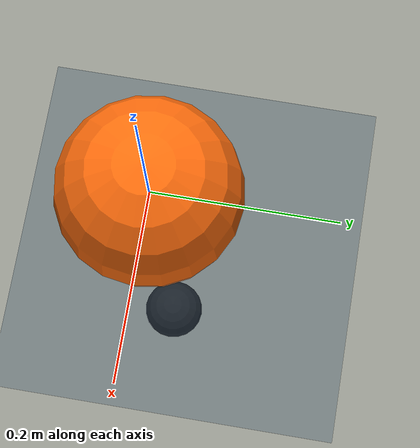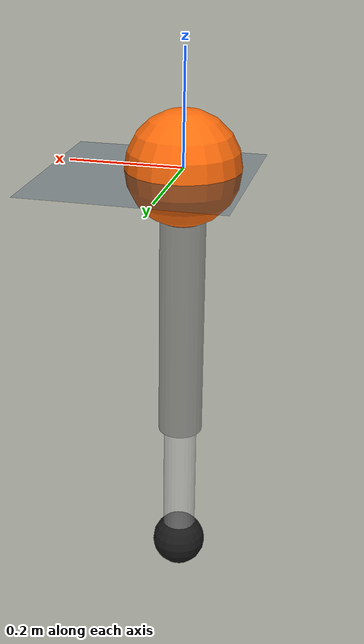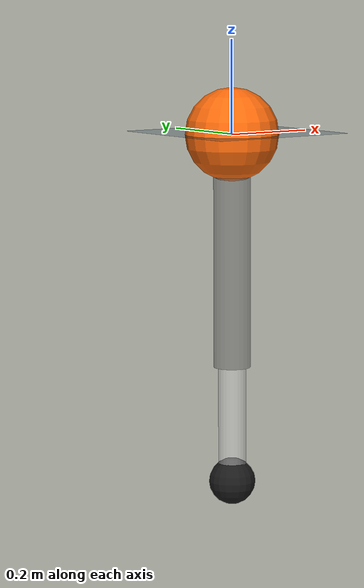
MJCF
<mujoco model="hopper">

    <!-- Simulation settings-->
    <option solver="Newton" integrator="RK4" timestep="0.005" iterations="20" ls_iterations="20" cone="elliptic"/>

    <!-- Inertia is computed from geometry -->
    <compiler inertiafromgeom="true" />

    <asset>
        <texture type="skybox" builtin="flat" rgb1="0 0 0" rgb2="0 0 0" width="512" height="512"/>
        <texture type="2d" name="groundplane" builtin="checker" mark="edge" rgb1="0.2 0.3 0.4" rgb2="0.1 0.2 0.3" markrgb="0.9 0.9 0.9" width="300" height="300"/>
        <material name="groundplane" texture="groundplane" texuniform="true" texrepeat="5 5" reflectance="0.2"/>
    </asset>

    <!-- Memory settings (default is 1000) -->
    <size nstack="3000" />

    <worldbody>

        <!-- Add light -->
        <light pos="-0.5 0.0 2.0" dir="0 0 -1" directional="true"/>

        <!-- Ground -->
        <geom name="ground" type="plane" size="0 0 0.01" material="groundplane" contype="1" conaffinity="6"/>

        <!-- Body -->
        <body name="torso" pos="0 0 0.0">
            <joint name="px"    type="slide" axis="1 0 0"/>
            <joint name="pz"    type="slide" axis="0 0 1"/>
            <joint name="theta" type="hinge" axis="0 1 0"/>
            <geom name="torso" type="sphere" size="0.1" rgba="1.0 0.424 0.047 1" contype="2" conaffinity="1"/>
            <site name="torso_site" type="sphere" size="0.101" rgba="0 0 0 0"/>
            <geom name="upper_leg" type="cylinder" fromto="0 0 0 0 0 -0.5" size="0.04" rgba="0.4 0.4 0.4 0.5"/>

            <!-- SpringLoaded Leg -->
            <body name="lower_leg" pos="0 0 -0.5">
                <joint name="leg" type="slide" axis="0 0 1" range="-0.25 0.25" springref="0.0" stiffness="2000.0" damping="50.0"/>
                <geom name="lower_leg" type="cylinder" fromto="0 0 0.25 0 0 -0.25" size="0.03" rgba="0.8 0.8 0.8 0.5"/>
                <geom name="foot" type="sphere" size="0.05" pos="0 0 -0.25" rgba="0.1 0.1 0.1 1" contype="4" conaffinity="1"/>
                <site name="foot_site" type="sphere" size="0.051" pos="0 0 -0.25" rgba="0 0 0 0"/>
            </body>
        </body>

    </worldbody>

    <!-- Sensors -->
    <sensor>
        <!-- contact sensors -->
        <touch name="torso_touch" site="torso_site"/>
        <touch name="foot_touch"  site="foot_site"/>

        <!-- foot world position -->
        <framepos name="torso_pos" objtype="site" objname="torso_site"/>
        <framepos name="foot_pos" objtype="site" objname="foot_site"/>
    </sensor>

    <!-- Actutators -->
    <actuator>
        <motor name="body_motor" joint="theta" ctrllimited="true" ctrlrange="-1 1" gear="20"/>
        <motor name="leg_motor" joint="leg" ctrllimited="true" ctrlrange="-1 1" gear="300"/>
    </actuator>

    <!-- default configuration (when you press "Load key" button) -->
    <keyframe>
        <key name="default" qpos="0.0 1.25 0.0 0.0" qvel="0 0 0 0" />
    </keyframe>

</mujoco>
